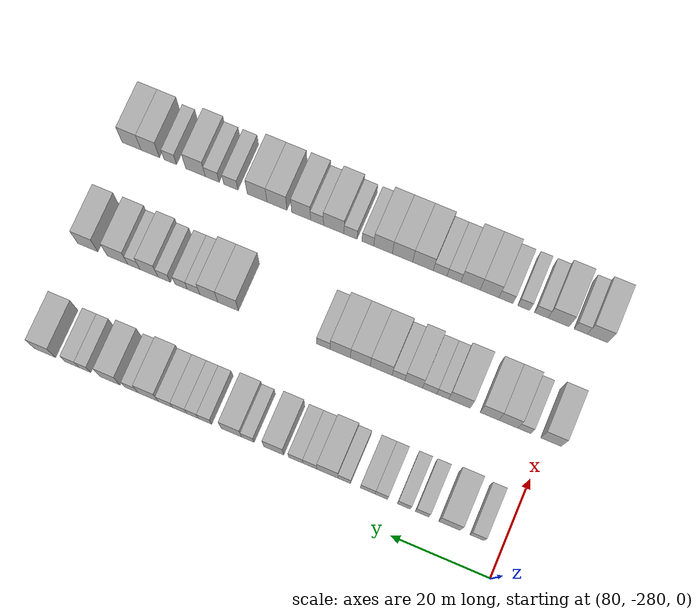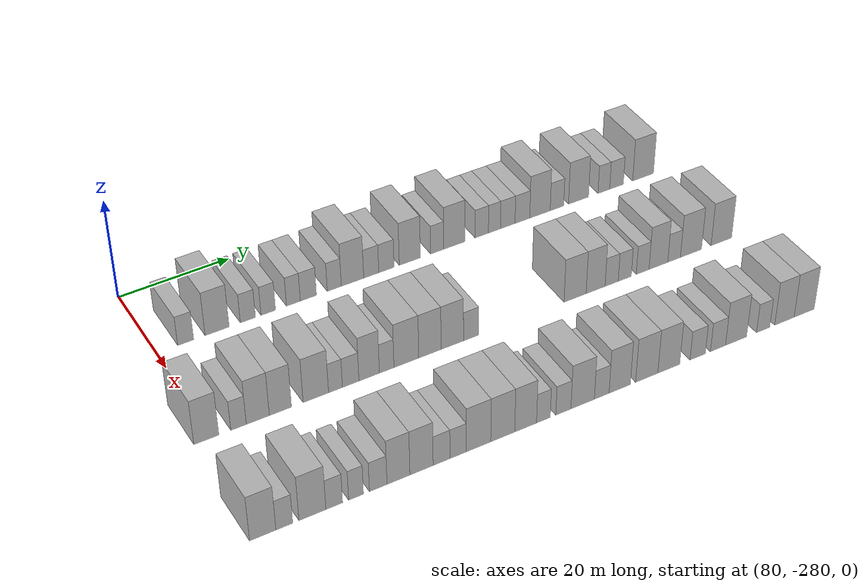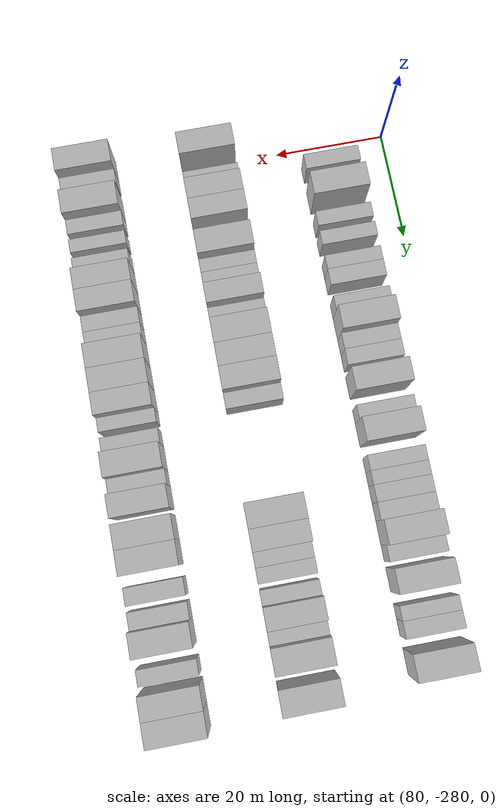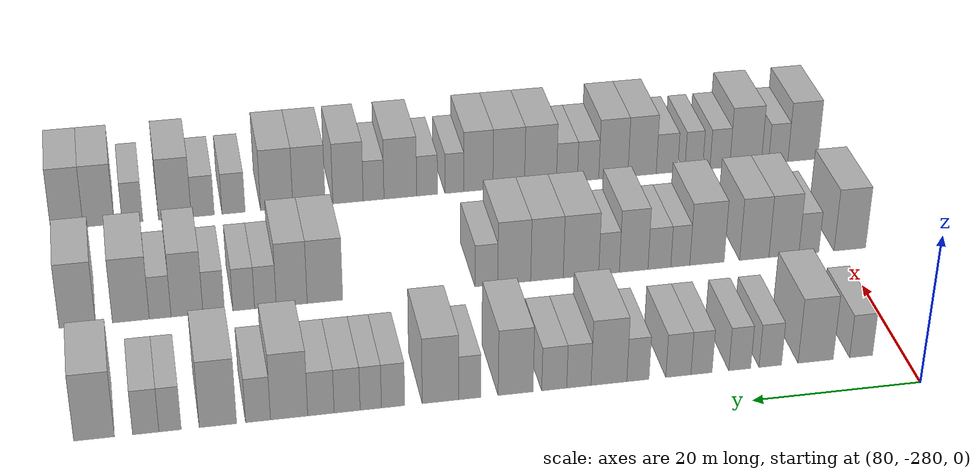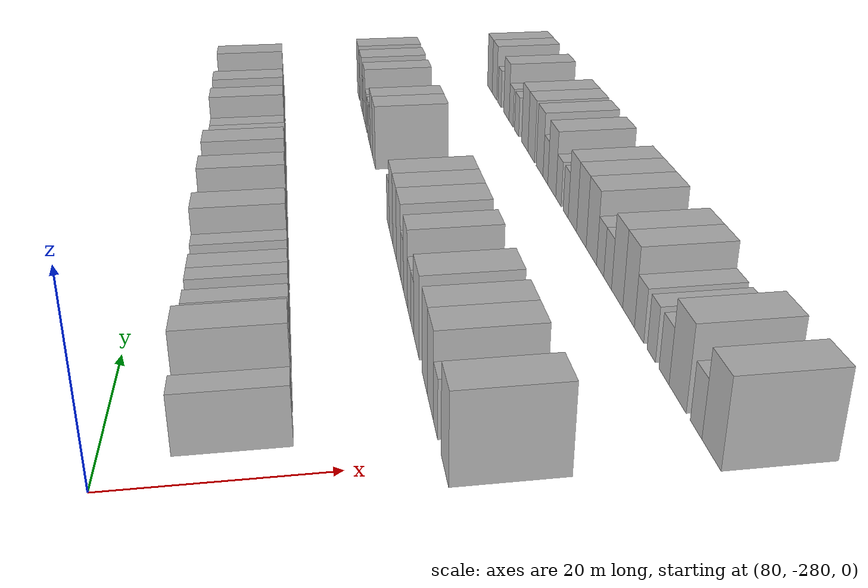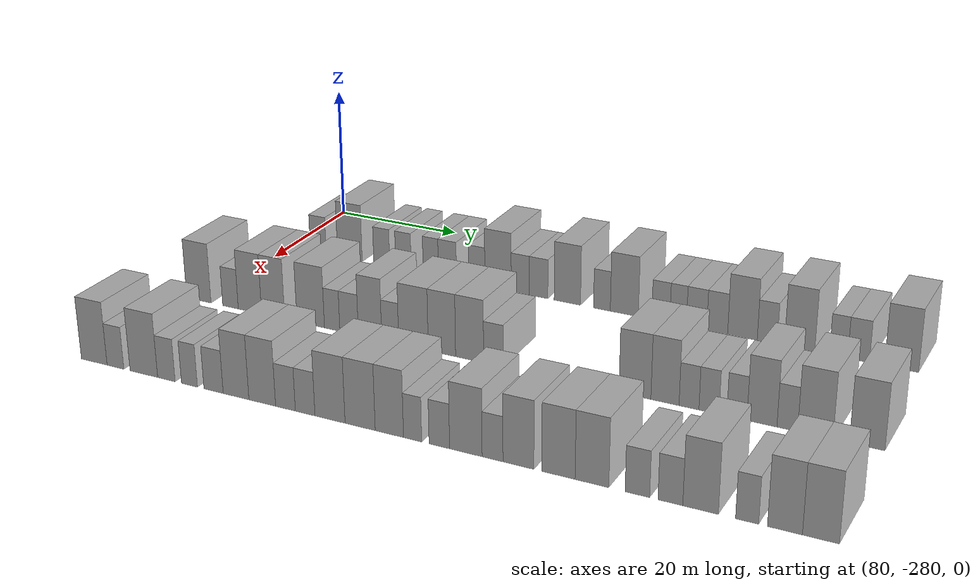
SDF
<sdf version="1.6">
 <world name="default">
  <model name="building_592">
   <static>1</static>
   <pose>91.0000 -274.8973 0 0.000000 0.000000 0.000000</pose>
   <link name="link">
    <pose>0 0 3.00 0 0 0</pose>
    <collision name="collision"><geometry><box><size>10.0000 2.7954 6.0000</size></box></geometry></collision>
    <visual name="visual">
     <cast_shadows>0</cast_shadows>
     <geometry><box><size>10.0000 2.7954 6.0000</size></box></geometry>
     <material>
      <script>
       <uri>model://HANNAS_wall/materials/scripts</uri>
       <uri>model://HANNAS_wall/materials/textures</uri>
       <name>vrc/HANNAS_wall</name>
      </script>
     </material>
    </visual>
   </link>
  </model>
  <model name="building_593">
   <static>1</static>
   <pose>91.0000 -269.3680 0 0.000000 0.000000 0.000000</pose>
   <link name="link">
    <pose>0 0 4.50 0 0 0</pose>
    <collision name="collision"><geometry><box><size>10.0000 4.2632 9.0000</size></box></geometry></collision>
    <visual name="visual">
     <cast_shadows>0</cast_shadows>
     <geometry><box><size>10.0000 4.2632 9.0000</size></box></geometry>
     <material>
      <script>
       <uri>model://HANNAS_wall/materials/scripts</uri>
       <uri>model://HANNAS_wall/materials/textures</uri>
       <name>vrc/HANNAS_wall</name>
      </script>
     </material>
    </visual>
   </link>
  </model>
  <model name="building_594">
   <static>1</static>
   <pose>91.0000 -263.8784 0 0.000000 0.000000 0.000000</pose>
   <link name="link">
    <pose>0 0 3.00 0 0 0</pose>
    <collision name="collision"><geometry><box><size>10.0000 2.7162 6.0000</size></box></geometry></collision>
    <visual name="visual">
     <cast_shadows>0</cast_shadows>
     <geometry><box><size>10.0000 2.7162 6.0000</size></box></geometry>
     <material>
      <script>
       <uri>model://HANNAS_wall/materials/scripts</uri>
       <uri>model://HANNAS_wall/materials/textures</uri>
       <name>vrc/HANNAS_wall</name>
      </script>
     </material>
    </visual>
   </link>
  </model>
  <model name="building_595">
   <static>1</static>
   <pose>91.0000 -260.2085 0 0.000000 0.000000 0.000000</pose>
   <link name="link">
    <pose>0 0 3.00 0 0 0</pose>
    <collision name="collision"><geometry><box><size>10.0000 2.6235 6.0000</size></box></geometry></collision>
    <visual name="visual">
     <cast_shadows>0</cast_shadows>
     <geometry><box><size>10.0000 2.6235 6.0000</size></box></geometry>
     <material>
      <script>
       <uri>model://HANNAS_wall/materials/scripts</uri>
       <uri>model://HANNAS_wall/materials/textures</uri>
       <name>vrc/HANNAS_wall</name>
      </script>
     </material>
    </visual>
   </link>
  </model>
  <model name="building_596">
   <static>1</static>
   <pose>91.0000 -255.6333 0 0.000000 0.000000 0.000000</pose>
   <link name="link">
    <pose>0 0 3.00 0 0 0</pose>
    <collision name="collision"><geometry><box><size>10.0000 2.5269 6.0000</size></box></geometry></collision>
    <visual name="visual">
     <cast_shadows>0</cast_shadows>
     <geometry><box><size>10.0000 2.5269 6.0000</size></box></geometry>
     <material>
      <script>
       <uri>model://HANNAS_wall/materials/scripts</uri>
       <uri>model://HANNAS_wall/materials/textures</uri>
       <name>vrc/HANNAS_wall</name>
      </script>
     </material>
    </visual>
   </link>
  </model>
  <model name="building_597">
   <static>1</static>
   <pose>91.0000 -252.8774 0 0.000000 0.000000 0.000000</pose>
   <link name="link">
    <pose>0 0 3.00 0 0 0</pose>
    <collision name="collision"><geometry><box><size>10.0000 2.9849 6.0000</size></box></geometry></collision>
    <visual name="visual">
     <cast_shadows>0</cast_shadows>
     <geometry><box><size>10.0000 2.9849 6.0000</size></box></geometry>
     <material>
      <script>
       <uri>model://HANNAS_wall/materials/scripts</uri>
       <uri>model://HANNAS_wall/materials/textures</uri>
       <name>vrc/HANNAS_wall</name>
      </script>
     </material>
    </visual>
   </link>
  </model>
  <model name="building_598">
   <static>1</static>
   <pose>91.0000 -248.0759 0 0.000000 0.000000 0.000000</pose>
   <link name="link">
    <pose>0 0 3.00 0 0 0</pose>
    <collision name="collision"><geometry><box><size>10.0000 2.6181 6.0000</size></box></geometry></collision>
    <visual name="visual">
     <cast_shadows>0</cast_shadows>
     <geometry><box><size>10.0000 2.6181 6.0000</size></box></geometry>
     <material>
      <script>
       <uri>model://HANNAS_wall/materials/scripts</uri>
       <uri>model://HANNAS_wall/materials/textures</uri>
       <name>vrc/HANNAS_wall</name>
      </script>
     </material>
    </visual>
   </link>
  </model>
  <model name="building_599">
   <static>1</static>
   <pose>91.0000 -244.6546 0 0.000000 0.000000 0.000000</pose>
   <link name="link">
    <pose>0 0 4.50 0 0 0</pose>
    <collision name="collision"><geometry><box><size>10.0000 4.2245 9.0000</size></box></geometry></collision>
    <visual name="visual">
     <cast_shadows>0</cast_shadows>
     <geometry><box><size>10.0000 4.2245 9.0000</size></box></geometry>
     <material>
      <script>
       <uri>model://HANNAS_wall/materials/scripts</uri>
       <uri>model://HANNAS_wall/materials/textures</uri>
       <name>vrc/HANNAS_wall</name>
      </script>
     </material>
    </visual>
   </link>
  </model>
  <model name="building_600">
   <static>1</static>
   <pose>91.0000 -241.1189 0 0.000000 0.000000 0.000000</pose>
   <link name="link">
    <pose>0 0 3.00 0 0 0</pose>
    <collision name="collision"><geometry><box><size>10.0000 2.8469 6.0000</size></box></geometry></collision>
    <visual name="visual">
     <cast_shadows>0</cast_shadows>
     <geometry><box><size>10.0000 2.8469 6.0000</size></box></geometry>
     <material>
      <script>
       <uri>model://HANNAS_wall/materials/scripts</uri>
       <uri>model://HANNAS_wall/materials/textures</uri>
       <name>vrc/HANNAS_wall</name>
      </script>
     </material>
    </visual>
   </link>
  </model>
  <model name="building_601">
   <static>1</static>
   <pose>91.0000 -238.2325 0 0.000000 0.000000 0.000000</pose>
   <link name="link">
    <pose>0 0 3.00 0 0 0</pose>
    <collision name="collision"><geometry><box><size>10.0000 2.9258 6.0000</size></box></geometry></collision>
    <visual name="visual">
     <cast_shadows>0</cast_shadows>
     <geometry><box><size>10.0000 2.9258 6.0000</size></box></geometry>
     <material>
      <script>
       <uri>model://HANNAS_wall/materials/scripts</uri>
       <uri>model://HANNAS_wall/materials/textures</uri>
       <name>vrc/HANNAS_wall</name>
      </script>
     </material>
    </visual>
   </link>
  </model>
  <model name="building_602">
   <static>1</static>
   <pose>91.0000 -233.7349 0 0.000000 0.000000 0.000000</pose>
   <link name="link">
    <pose>0 0 4.50 0 0 0</pose>
    <collision name="collision"><geometry><box><size>10.0000 4.0695 9.0000</size></box></geometry></collision>
    <visual name="visual">
     <cast_shadows>0</cast_shadows>
     <geometry><box><size>10.0000 4.0695 9.0000</size></box></geometry>
     <material>
      <script>
       <uri>model://HANNAS_wall/materials/scripts</uri>
       <uri>model://HANNAS_wall/materials/textures</uri>
       <name>vrc/HANNAS_wall</name>
      </script>
     </material>
    </visual>
   </link>
  </model>
  <model name="building_603">
   <static>1</static>
   <pose>91.0000 -228.4271 0 0.000000 0.000000 0.000000</pose>
   <link name="link">
    <pose>0 0 3.00 0 0 0</pose>
    <collision name="collision"><geometry><box><size>10.0000 2.5460 6.0000</size></box></geometry></collision>
    <visual name="visual">
     <cast_shadows>0</cast_shadows>
     <geometry><box><size>10.0000 2.5460 6.0000</size></box></geometry>
     <material>
      <script>
       <uri>model://HANNAS_wall/materials/scripts</uri>
       <uri>model://HANNAS_wall/materials/textures</uri>
       <name>vrc/HANNAS_wall</name>
      </script>
     </material>
    </visual>
   </link>
  </model>
  <model name="building_604">
   <static>1</static>
   <pose>91.0000 -225.0515 0 0.000000 0.000000 0.000000</pose>
   <link name="link">
    <pose>0 0 4.50 0 0 0</pose>
    <collision name="collision"><geometry><box><size>10.0000 4.2052 9.0000</size></box></geometry></collision>
    <visual name="visual">
     <cast_shadows>0</cast_shadows>
     <geometry><box><size>10.0000 4.2052 9.0000</size></box></geometry>
     <material>
      <script>
       <uri>model://HANNAS_wall/materials/scripts</uri>
       <uri>model://HANNAS_wall/materials/textures</uri>
       <name>vrc/HANNAS_wall</name>
      </script>
     </material>
    </visual>
   </link>
  </model>
  <model name="building_605">
   <static>1</static>
   <pose>91.0000 -219.6173 0 0.000000 0.000000 0.000000</pose>
   <link name="link">
    <pose>0 0 3.00 0 0 0</pose>
    <collision name="collision"><geometry><box><size>10.0000 2.6631 6.0000</size></box></geometry></collision>
    <visual name="visual">
     <cast_shadows>0</cast_shadows>
     <geometry><box><size>10.0000 2.6631 6.0000</size></box></geometry>
     <material>
      <script>
       <uri>model://HANNAS_wall/materials/scripts</uri>
       <uri>model://HANNAS_wall/materials/textures</uri>
       <name>vrc/HANNAS_wall</name>
      </script>
     </material>
    </visual>
   </link>
  </model>
  <model name="building_606">
   <static>1</static>
   <pose>91.0000 -217.0717 0 0.000000 0.000000 0.000000</pose>
   <link name="link">
    <pose>0 0 3.00 0 0 0</pose>
    <collision name="collision"><geometry><box><size>10.0000 2.4281 6.0000</size></box></geometry></collision>
    <visual name="visual">
     <cast_shadows>0</cast_shadows>
     <geometry><box><size>10.0000 2.4281 6.0000</size></box></geometry>
     <material>
      <script>
       <uri>model://HANNAS_wall/materials/scripts</uri>
       <uri>model://HANNAS_wall/materials/textures</uri>
       <name>vrc/HANNAS_wall</name>
      </script>
     </material>
    </visual>
   </link>
  </model>
  <model name="building_607">
   <static>1</static>
   <pose>91.0000 -214.3846 0 0.000000 0.000000 0.000000</pose>
   <link name="link">
    <pose>0 0 3.00 0 0 0</pose>
    <collision name="collision"><geometry><box><size>10.0000 2.9461 6.0000</size></box></geometry></collision>
    <visual name="visual">
     <cast_shadows>0</cast_shadows>
     <geometry><box><size>10.0000 2.9461 6.0000</size></box></geometry>
     <material>
      <script>
       <uri>model://HANNAS_wall/materials/scripts</uri>
       <uri>model://HANNAS_wall/materials/textures</uri>
       <name>vrc/HANNAS_wall</name>
      </script>
     </material>
    </visual>
   </link>
  </model>
  <model name="building_608">
   <static>1</static>
   <pose>91.0000 -211.4166 0 0.000000 0.000000 0.000000</pose>
   <link name="link">
    <pose>0 0 3.00 0 0 0</pose>
    <collision name="collision"><geometry><box><size>10.0000 2.9899 6.0000</size></box></geometry></collision>
    <visual name="visual">
     <cast_shadows>0</cast_shadows>
     <geometry><box><size>10.0000 2.9899 6.0000</size></box></geometry>
     <material>
      <script>
       <uri>model://HANNAS_wall/materials/scripts</uri>
       <uri>model://HANNAS_wall/materials/textures</uri>
       <name>vrc/HANNAS_wall</name>
      </script>
     </material>
    </visual>
   </link>
  </model>
  <model name="building_609">
   <static>1</static>
   <pose>91.0000 -207.8240 0 0.000000 0.000000 0.000000</pose>
   <link name="link">
    <pose>0 0 4.50 0 0 0</pose>
    <collision name="collision"><geometry><box><size>10.0000 4.1954 9.0000</size></box></geometry></collision>
    <visual name="visual">
     <cast_shadows>0</cast_shadows>
     <geometry><box><size>10.0000 4.1954 9.0000</size></box></geometry>
     <material>
      <script>
       <uri>model://HANNAS_wall/materials/scripts</uri>
       <uri>model://HANNAS_wall/materials/textures</uri>
       <name>vrc/HANNAS_wall</name>
      </script>
     </material>
    </visual>
   </link>
  </model>
  <model name="building_610">
   <static>1</static>
   <pose>91.0000 -204.3295 0 0.000000 0.000000 0.000000</pose>
   <link name="link">
    <pose>0 0 3.00 0 0 0</pose>
    <collision name="collision"><geometry><box><size>10.0000 2.7937 6.0000</size></box></geometry></collision>
    <visual name="visual">
     <cast_shadows>0</cast_shadows>
     <geometry><box><size>10.0000 2.7937 6.0000</size></box></geometry>
     <material>
      <script>
       <uri>model://HANNAS_wall/materials/scripts</uri>
       <uri>model://HANNAS_wall/materials/textures</uri>
       <name>vrc/HANNAS_wall</name>
      </script>
     </material>
    </visual>
   </link>
  </model>
  <model name="building_611">
   <static>1</static>
   <pose>91.0000 -199.8464 0 0.000000 0.000000 0.000000</pose>
   <link name="link">
    <pose>0 0 4.50 0 0 0</pose>
    <collision name="collision"><geometry><box><size>10.0000 4.1726 9.0000</size></box></geometry></collision>
    <visual name="visual">
     <cast_shadows>0</cast_shadows>
     <geometry><box><size>10.0000 4.1726 9.0000</size></box></geometry>
     <material>
      <script>
       <uri>model://HANNAS_wall/materials/scripts</uri>
       <uri>model://HANNAS_wall/materials/textures</uri>
       <name>vrc/HANNAS_wall</name>
      </script>
     </material>
    </visual>
   </link>
  </model>
  <model name="building_612">
   <static>1</static>
   <pose>91.0000 -194.5262 0 0.000000 0.000000 0.000000</pose>
   <link name="link">
    <pose>0 0 3.00 0 0 0</pose>
    <collision name="collision"><geometry><box><size>10.0000 2.4677 6.0000</size></box></geometry></collision>
    <visual name="visual">
     <cast_shadows>0</cast_shadows>
     <geometry><box><size>10.0000 2.4677 6.0000</size></box></geometry>
     <material>
      <script>
       <uri>model://HANNAS_wall/materials/scripts</uri>
       <uri>model://HANNAS_wall/materials/textures</uri>
       <name>vrc/HANNAS_wall</name>
      </script>
     </material>
    </visual>
   </link>
  </model>
  <model name="building_613">
   <static>1</static>
   <pose>91.0000 -191.8383 0 0.000000 0.000000 0.000000</pose>
   <link name="link">
    <pose>0 0 3.00 0 0 0</pose>
    <collision name="collision"><geometry><box><size>10.0000 2.9079 6.0000</size></box></geometry></collision>
    <visual name="visual">
     <cast_shadows>0</cast_shadows>
     <geometry><box><size>10.0000 2.9079 6.0000</size></box></geometry>
     <material>
      <script>
       <uri>model://HANNAS_wall/materials/scripts</uri>
       <uri>model://HANNAS_wall/materials/textures</uri>
       <name>vrc/HANNAS_wall</name>
      </script>
     </material>
    </visual>
   </link>
  </model>
  <model name="building_614">
   <static>1</static>
   <pose>91.0000 -186.1509 0 0.000000 0.000000 0.000000</pose>
   <link name="link">
    <pose>0 0 4.50 0 0 0</pose>
    <collision name="collision"><geometry><box><size>10.0000 4.4670 9.0000</size></box></geometry></collision>
    <visual name="visual">
     <cast_shadows>0</cast_shadows>
     <geometry><box><size>10.0000 4.4670 9.0000</size></box></geometry>
     <material>
      <script>
       <uri>model://HANNAS_wall/materials/scripts</uri>
       <uri>model://HANNAS_wall/materials/textures</uri>
       <name>vrc/HANNAS_wall</name>
      </script>
     </material>
    </visual>
   </link>
  </model>
  <model name="building_779">
   <static>1</static>
   <pose>113.0000 -281.0639 0 0.000000 0.000000 0.000000</pose>
   <link name="link">
    <pose>0 0 4.50 0 0 0</pose>
    <collision name="collision"><geometry><box><size>10.0000 4.1488 9.0000</size></box></geometry></collision>
    <visual name="visual">
     <cast_shadows>0</cast_shadows>
     <geometry><box><size>10.0000 4.1488 9.0000</size></box></geometry>
     <material>
      <script>
       <uri>model://HANNAS_wall/materials/scripts</uri>
       <uri>model://HANNAS_wall/materials/textures</uri>
       <name>vrc/HANNAS_wall</name>
      </script>
     </material>
    </visual>
   </link>
  </model>
  <model name="building_780">
   <static>1</static>
   <pose>113.0000 -275.6864 0 0.000000 0.000000 0.000000</pose>
   <link name="link">
    <pose>0 0 3.00 0 0 0</pose>
    <collision name="collision"><geometry><box><size>10.0000 2.6061 6.0000</size></box></geometry></collision>
    <visual name="visual">
     <cast_shadows>0</cast_shadows>
     <geometry><box><size>10.0000 2.6061 6.0000</size></box></geometry>
     <material>
      <script>
       <uri>model://HANNAS_wall/materials/scripts</uri>
       <uri>model://HANNAS_wall/materials/textures</uri>
       <name>vrc/HANNAS_wall</name>
      </script>
     </material>
    </visual>
   </link>
  </model>
  <model name="building_781">
   <static>1</static>
   <pose>113.0000 -272.4331 0 0.000000 0.000000 0.000000</pose>
   <link name="link">
    <pose>0 0 4.50 0 0 0</pose>
    <collision name="collision"><geometry><box><size>10.0000 3.9006 9.0000</size></box></geometry></collision>
    <visual name="visual">
     <cast_shadows>0</cast_shadows>
     <geometry><box><size>10.0000 3.9006 9.0000</size></box></geometry>
     <material>
      <script>
       <uri>model://HANNAS_wall/materials/scripts</uri>
       <uri>model://HANNAS_wall/materials/textures</uri>
       <name>vrc/HANNAS_wall</name>
      </script>
     </material>
    </visual>
   </link>
  </model>
  <model name="building_782">
   <static>1</static>
   <pose>113.0000 -268.5843 0 0.000000 0.000000 0.000000</pose>
   <link name="link">
    <pose>0 0 4.50 0 0 0</pose>
    <collision name="collision"><geometry><box><size>10.0000 3.7970 9.0000</size></box></geometry></collision>
    <visual name="visual">
     <cast_shadows>0</cast_shadows>
     <geometry><box><size>10.0000 3.7970 9.0000</size></box></geometry>
     <material>
      <script>
       <uri>model://HANNAS_wall/materials/scripts</uri>
       <uri>model://HANNAS_wall/materials/textures</uri>
       <name>vrc/HANNAS_wall</name>
      </script>
     </material>
    </visual>
   </link>
  </model>
  <model name="building_783">
   <static>1</static>
   <pose>113.0000 -262.4732 0 0.000000 0.000000 0.000000</pose>
   <link name="link">
    <pose>0 0 4.50 0 0 0</pose>
    <collision name="collision"><geometry><box><size>10.0000 4.4252 9.0000</size></box></geometry></collision>
    <visual name="visual">
     <cast_shadows>0</cast_shadows>
     <geometry><box><size>10.0000 4.4252 9.0000</size></box></geometry>
     <material>
      <script>
       <uri>model://HANNAS_wall/materials/scripts</uri>
       <uri>model://HANNAS_wall/materials/textures</uri>
       <name>vrc/HANNAS_wall</name>
      </script>
     </material>
    </visual>
   </link>
  </model>
  <model name="building_784">
   <static>1</static>
   <pose>113.0000 -259.0394 0 0.000000 0.000000 0.000000</pose>
   <link name="link">
    <pose>0 0 3.00 0 0 0</pose>
    <collision name="collision"><geometry><box><size>10.0000 2.4423 6.0000</size></box></geometry></collision>
    <visual name="visual">
     <cast_shadows>0</cast_shadows>
     <geometry><box><size>10.0000 2.4423 6.0000</size></box></geometry>
     <material>
      <script>
       <uri>model://HANNAS_wall/materials/scripts</uri>
       <uri>model://HANNAS_wall/materials/textures</uri>
       <name>vrc/HANNAS_wall</name>
      </script>
     </material>
    </visual>
   </link>
  </model>
  <model name="building_785">
   <static>1</static>
   <pose>113.0000 -256.3604 0 0.000000 0.000000 0.000000</pose>
   <link name="link">
    <pose>0 0 3.00 0 0 0</pose>
    <collision name="collision"><geometry><box><size>10.0000 2.9159 6.0000</size></box></geometry></collision>
    <visual name="visual">
     <cast_shadows>0</cast_shadows>
     <geometry><box><size>10.0000 2.9159 6.0000</size></box></geometry>
     <material>
      <script>
       <uri>model://HANNAS_wall/materials/scripts</uri>
       <uri>model://HANNAS_wall/materials/textures</uri>
       <name>vrc/HANNAS_wall</name>
      </script>
     </material>
    </visual>
   </link>
  </model>
  <model name="building_786">
   <static>1</static>
   <pose>113.0000 -253.0785 0 0.000000 0.000000 0.000000</pose>
   <link name="link">
    <pose>0 0 4.50 0 0 0</pose>
    <collision name="collision"><geometry><box><size>10.0000 3.6478 9.0000</size></box></geometry></collision>
    <visual name="visual">
     <cast_shadows>0</cast_shadows>
     <geometry><box><size>10.0000 3.6478 9.0000</size></box></geometry>
     <material>
      <script>
       <uri>model://HANNAS_wall/materials/scripts</uri>
       <uri>model://HANNAS_wall/materials/textures</uri>
       <name>vrc/HANNAS_wall</name>
      </script>
     </material>
    </visual>
   </link>
  </model>
  <model name="building_787">
   <static>1</static>
   <pose>113.0000 -249.9447 0 0.000000 0.000000 0.000000</pose>
   <link name="link">
    <pose>0 0 3.00 0 0 0</pose>
    <collision name="collision"><geometry><box><size>10.0000 2.6198 6.0000</size></box></geometry></collision>
    <visual name="visual">
     <cast_shadows>0</cast_shadows>
     <geometry><box><size>10.0000 2.6198 6.0000</size></box></geometry>
     <material>
      <script>
       <uri>model://HANNAS_wall/materials/scripts</uri>
       <uri>model://HANNAS_wall/materials/textures</uri>
       <name>vrc/HANNAS_wall</name>
      </script>
     </material>
    </visual>
   </link>
  </model>
  <model name="building_788">
   <static>1</static>
   <pose>113.0000 -246.3886 0 0.000000 0.000000 0.000000</pose>
   <link name="link">
    <pose>0 0 4.50 0 0 0</pose>
    <collision name="collision"><geometry><box><size>10.0000 4.4924 9.0000</size></box></geometry></collision>
    <visual name="visual">
     <cast_shadows>0</cast_shadows>
     <geometry><box><size>10.0000 4.4924 9.0000</size></box></geometry>
     <material>
      <script>
       <uri>model://HANNAS_wall/materials/scripts</uri>
       <uri>model://HANNAS_wall/materials/textures</uri>
       <name>vrc/HANNAS_wall</name>
      </script>
     </material>
    </visual>
   </link>
  </model>
  <model name="building_789">
   <static>1</static>
   <pose>113.0000 -242.0930 0 0.000000 0.000000 0.000000</pose>
   <link name="link">
    <pose>0 0 4.50 0 0 0</pose>
    <collision name="collision"><geometry><box><size>10.0000 4.0987 9.0000</size></box></geometry></collision>
    <visual name="visual">
     <cast_shadows>0</cast_shadows>
     <geometry><box><size>10.0000 4.0987 9.0000</size></box></geometry>
     <material>
      <script>
       <uri>model://HANNAS_wall/materials/scripts</uri>
       <uri>model://HANNAS_wall/materials/textures</uri>
       <name>vrc/HANNAS_wall</name>
      </script>
     </material>
    </visual>
   </link>
  </model>
  <model name="building_790">
   <static>1</static>
   <pose>113.0000 -237.9761 0 0.000000 0.000000 0.000000</pose>
   <link name="link">
    <pose>0 0 4.50 0 0 0</pose>
    <collision name="collision"><geometry><box><size>10.0000 4.1350 9.0000</size></box></geometry></collision>
    <visual name="visual">
     <cast_shadows>0</cast_shadows>
     <geometry><box><size>10.0000 4.1350 9.0000</size></box></geometry>
     <material>
      <script>
       <uri>model://HANNAS_wall/materials/scripts</uri>
       <uri>model://HANNAS_wall/materials/textures</uri>
       <name>vrc/HANNAS_wall</name>
      </script>
     </material>
    </visual>
   </link>
  </model>
  <model name="building_791">
   <static>1</static>
   <pose>113.0000 -234.4866 0 0.000000 0.000000 0.000000</pose>
   <link name="link">
    <pose>0 0 3.00 0 0 0</pose>
    <collision name="collision"><geometry><box><size>10.0000 2.8439 6.0000</size></box></geometry></collision>
    <visual name="visual">
     <cast_shadows>0</cast_shadows>
     <geometry><box><size>10.0000 2.8439 6.0000</size></box></geometry>
     <material>
      <script>
       <uri>model://HANNAS_wall/materials/scripts</uri>
       <uri>model://HANNAS_wall/materials/textures</uri>
       <name>vrc/HANNAS_wall</name>
      </script>
     </material>
    </visual>
   </link>
  </model>
  <model name="building_792">
   <static>1</static>
   <pose>113.0000 -214.5796 0 0.000000 0.000000 0.000000</pose>
   <link name="link">
    <pose>0 0 4.50 0 0 0</pose>
    <collision name="collision"><geometry><box><size>10.0000 4.3234 9.0000</size></box></geometry></collision>
    <visual name="visual">
     <cast_shadows>0</cast_shadows>
     <geometry><box><size>10.0000 4.3234 9.0000</size></box></geometry>
     <material>
      <script>
       <uri>model://HANNAS_wall/materials/scripts</uri>
       <uri>model://HANNAS_wall/materials/textures</uri>
       <name>vrc/HANNAS_wall</name>
      </script>
     </material>
    </visual>
   </link>
  </model>
  <model name="building_793">
   <static>1</static>
   <pose>113.0000 -210.5376 0 0.000000 0.000000 0.000000</pose>
   <link name="link">
    <pose>0 0 4.50 0 0 0</pose>
    <collision name="collision"><geometry><box><size>10.0000 3.7606 9.0000</size></box></geometry></collision>
    <visual name="visual">
     <cast_shadows>0</cast_shadows>
     <geometry><box><size>10.0000 3.7606 9.0000</size></box></geometry>
     <material>
      <script>
       <uri>model://HANNAS_wall/materials/scripts</uri>
       <uri>model://HANNAS_wall/materials/textures</uri>
       <name>vrc/HANNAS_wall</name>
      </script>
     </material>
    </visual>
   </link>
  </model>
  <model name="building_794">
   <static>1</static>
   <pose>113.0000 -207.3468 0 0.000000 0.000000 0.000000</pose>
   <link name="link">
    <pose>0 0 3.00 0 0 0</pose>
    <collision name="collision"><geometry><box><size>10.0000 2.6208 6.0000</size></box></geometry></collision>
    <visual name="visual">
     <cast_shadows>0</cast_shadows>
     <geometry><box><size>10.0000 2.6208 6.0000</size></box></geometry>
     <material>
      <script>
       <uri>model://HANNAS_wall/materials/scripts</uri>
       <uri>model://HANNAS_wall/materials/textures</uri>
       <name>vrc/HANNAS_wall</name>
      </script>
     </material>
    </visual>
   </link>
  </model>
  <model name="building_795">
   <static>1</static>
   <pose>113.0000 -204.7209 0 0.000000 0.000000 0.000000</pose>
   <link name="link">
    <pose>0 0 3.00 0 0 0</pose>
    <collision name="collision"><geometry><box><size>10.0000 2.6310 6.0000</size></box></geometry></collision>
    <visual name="visual">
     <cast_shadows>0</cast_shadows>
     <geometry><box><size>10.0000 2.6310 6.0000</size></box></geometry>
     <material>
      <script>
       <uri>model://HANNAS_wall/materials/scripts</uri>
       <uri>model://HANNAS_wall/materials/textures</uri>
       <name>vrc/HANNAS_wall</name>
      </script>
     </material>
    </visual>
   </link>
  </model>
  <model name="building_796">
   <static>1</static>
   <pose>113.0000 -201.1106 0 0.000000 0.000000 0.000000</pose>
   <link name="link">
    <pose>0 0 3.00 0 0 0</pose>
    <collision name="collision"><geometry><box><size>10.0000 2.5897 6.0000</size></box></geometry></collision>
    <visual name="visual">
     <cast_shadows>0</cast_shadows>
     <geometry><box><size>10.0000 2.5897 6.0000</size></box></geometry>
     <material>
      <script>
       <uri>model://HANNAS_wall/materials/scripts</uri>
       <uri>model://HANNAS_wall/materials/textures</uri>
       <name>vrc/HANNAS_wall</name>
      </script>
     </material>
    </visual>
   </link>
  </model>
  <model name="building_797">
   <static>1</static>
   <pose>113.0000 -197.9054 0 0.000000 0.000000 0.000000</pose>
   <link name="link">
    <pose>0 0 4.50 0 0 0</pose>
    <collision name="collision"><geometry><box><size>10.0000 3.8207 9.0000</size></box></geometry></collision>
    <visual name="visual">
     <cast_shadows>0</cast_shadows>
     <geometry><box><size>10.0000 3.8207 9.0000</size></box></geometry>
     <material>
      <script>
       <uri>model://HANNAS_wall/materials/scripts</uri>
       <uri>model://HANNAS_wall/materials/textures</uri>
       <name>vrc/HANNAS_wall</name>
      </script>
     </material>
    </visual>
   </link>
  </model>
  <model name="building_798">
   <static>1</static>
   <pose>113.0000 -194.6949 0 0.000000 0.000000 0.000000</pose>
   <link name="link">
    <pose>0 0 3.00 0 0 0</pose>
    <collision name="collision"><geometry><box><size>10.0000 2.6004 6.0000</size></box></geometry></collision>
    <visual name="visual">
     <cast_shadows>0</cast_shadows>
     <geometry><box><size>10.0000 2.6004 6.0000</size></box></geometry>
     <material>
      <script>
       <uri>model://HANNAS_wall/materials/scripts</uri>
       <uri>model://HANNAS_wall/materials/textures</uri>
       <name>vrc/HANNAS_wall</name>
      </script>
     </material>
    </visual>
   </link>
  </model>
  <model name="building_799">
   <static>1</static>
   <pose>113.0000 -191.2028 0 0.000000 0.000000 0.000000</pose>
   <link name="link">
    <pose>0 0 4.50 0 0 0</pose>
    <collision name="collision"><geometry><box><size>10.0000 4.3839 9.0000</size></box></geometry></collision>
    <visual name="visual">
     <cast_shadows>0</cast_shadows>
     <geometry><box><size>10.0000 4.3839 9.0000</size></box></geometry>
     <material>
      <script>
       <uri>model://HANNAS_wall/materials/scripts</uri>
       <uri>model://HANNAS_wall/materials/textures</uri>
       <name>vrc/HANNAS_wall</name>
      </script>
     </material>
    </visual>
   </link>
  </model>
  <model name="building_800">
   <static>1</static>
   <pose>113.0000 -184.8566 0 0.000000 0.000000 0.000000</pose>
   <link name="link">
    <pose>0 0 4.50 0 0 0</pose>
    <collision name="collision"><geometry><box><size>10.0000 4.3085 9.0000</size></box></geometry></collision>
    <visual name="visual">
     <cast_shadows>0</cast_shadows>
     <geometry><box><size>10.0000 4.3085 9.0000</size></box></geometry>
     <material>
      <script>
       <uri>model://HANNAS_wall/materials/scripts</uri>
       <uri>model://HANNAS_wall/materials/textures</uri>
       <name>vrc/HANNAS_wall</name>
      </script>
     </material>
    </visual>
   </link>
  </model>
  <model name="building_969">
   <static>1</static>
   <pose>135.0000 -281.9927 0 0.000000 0.000000 0.000000</pose>
   <link name="link">
    <pose>0 0 4.50 0 0 0</pose>
    <collision name="collision"><geometry><box><size>10.0000 4.1954 9.0000</size></box></geometry></collision>
    <visual name="visual">
     <cast_shadows>0</cast_shadows>
     <geometry><box><size>10.0000 4.1954 9.0000</size></box></geometry>
     <material>
      <script>
       <uri>model://HANNAS_wall/materials/scripts</uri>
       <uri>model://HANNAS_wall/materials/textures</uri>
       <name>vrc/HANNAS_wall</name>
      </script>
     </material>
    </visual>
   </link>
  </model>
  <model name="building_970">
   <static>1</static>
   <pose>135.0000 -278.5426 0 0.000000 0.000000 0.000000</pose>
   <link name="link">
    <pose>0 0 3.00 0 0 0</pose>
    <collision name="collision"><geometry><box><size>10.0000 2.7048 6.0000</size></box></geometry></collision>
    <visual name="visual">
     <cast_shadows>0</cast_shadows>
     <geometry><box><size>10.0000 2.7048 6.0000</size></box></geometry>
     <material>
      <script>
       <uri>model://HANNAS_wall/materials/scripts</uri>
       <uri>model://HANNAS_wall/materials/textures</uri>
       <name>vrc/HANNAS_wall</name>
      </script>
     </material>
    </visual>
   </link>
  </model>
  <model name="building_971">
   <static>1</static>
   <pose>135.0000 -273.9978 0 0.000000 0.000000 0.000000</pose>
   <link name="link">
    <pose>0 0 4.50 0 0 0</pose>
    <collision name="collision"><geometry><box><size>10.0000 4.3847 9.0000</size></box></geometry></collision>
    <visual name="visual">
     <cast_shadows>0</cast_shadows>
     <geometry><box><size>10.0000 4.3847 9.0000</size></box></geometry>
     <material>
      <script>
       <uri>model://HANNAS_wall/materials/scripts</uri>
       <uri>model://HANNAS_wall/materials/textures</uri>
       <name>vrc/HANNAS_wall</name>
      </script>
     </material>
    </visual>
   </link>
  </model>
  <model name="building_972">
   <static>1</static>
   <pose>135.0000 -270.4334 0 0.000000 0.000000 0.000000</pose>
   <link name="link">
    <pose>0 0 3.00 0 0 0</pose>
    <collision name="collision"><geometry><box><size>10.0000 2.7441 6.0000</size></box></geometry></collision>
    <visual name="visual">
     <cast_shadows>0</cast_shadows>
     <geometry><box><size>10.0000 2.7441 6.0000</size></box></geometry>
     <material>
      <script>
       <uri>model://HANNAS_wall/materials/scripts</uri>
       <uri>model://HANNAS_wall/materials/textures</uri>
       <name>vrc/HANNAS_wall</name>
      </script>
     </material>
    </visual>
   </link>
  </model>
  <model name="building_973">
   <static>1</static>
   <pose>135.0000 -266.8317 0 0.000000 0.000000 0.000000</pose>
   <link name="link">
    <pose>0 0 3.00 0 0 0</pose>
    <collision name="collision"><geometry><box><size>10.0000 2.4593 6.0000</size></box></geometry></collision>
    <visual name="visual">
     <cast_shadows>0</cast_shadows>
     <geometry><box><size>10.0000 2.4593 6.0000</size></box></geometry>
     <material>
      <script>
       <uri>model://HANNAS_wall/materials/scripts</uri>
       <uri>model://HANNAS_wall/materials/textures</uri>
       <name>vrc/HANNAS_wall</name>
      </script>
     </material>
    </visual>
   </link>
  </model>
  <model name="building_974">
   <static>1</static>
   <pose>135.0000 -263.1345 0 0.000000 0.000000 0.000000</pose>
   <link name="link">
    <pose>0 0 3.00 0 0 0</pose>
    <collision name="collision"><geometry><box><size>10.0000 2.9352 6.0000</size></box></geometry></collision>
    <visual name="visual">
     <cast_shadows>0</cast_shadows>
     <geometry><box><size>10.0000 2.9352 6.0000</size></box></geometry>
     <material>
      <script>
       <uri>model://HANNAS_wall/materials/scripts</uri>
       <uri>model://HANNAS_wall/materials/textures</uri>
       <name>vrc/HANNAS_wall</name>
      </script>
     </material>
    </visual>
   </link>
  </model>
  <model name="building_975">
   <static>1</static>
   <pose>135.0000 -259.7271 0 0.000000 0.000000 0.000000</pose>
   <link name="link">
    <pose>0 0 4.50 0 0 0</pose>
    <collision name="collision"><geometry><box><size>10.0000 3.8796 9.0000</size></box></geometry></collision>
    <visual name="visual">
     <cast_shadows>0</cast_shadows>
     <geometry><box><size>10.0000 3.8796 9.0000</size></box></geometry>
     <material>
      <script>
       <uri>model://HANNAS_wall/materials/scripts</uri>
       <uri>model://HANNAS_wall/materials/textures</uri>
       <name>vrc/HANNAS_wall</name>
      </script>
     </material>
    </visual>
   </link>
  </model>
  <model name="building_976">
   <static>1</static>
   <pose>135.0000 -255.8022 0 0.000000 0.000000 0.000000</pose>
   <link name="link">
    <pose>0 0 4.50 0 0 0</pose>
    <collision name="collision"><geometry><box><size>10.0000 3.9701 9.0000</size></box></geometry></collision>
    <visual name="visual">
     <cast_shadows>0</cast_shadows>
     <geometry><box><size>10.0000 3.9701 9.0000</size></box></geometry>
     <material>
      <script>
       <uri>model://HANNAS_wall/materials/scripts</uri>
       <uri>model://HANNAS_wall/materials/textures</uri>
       <name>vrc/HANNAS_wall</name>
      </script>
     </material>
    </visual>
   </link>
  </model>
  <model name="building_977">
   <static>1</static>
   <pose>135.0000 -252.3696 0 0.000000 0.000000 0.000000</pose>
   <link name="link">
    <pose>0 0 3.00 0 0 0</pose>
    <collision name="collision"><geometry><box><size>10.0000 2.8952 6.0000</size></box></geometry></collision>
    <visual name="visual">
     <cast_shadows>0</cast_shadows>
     <geometry><box><size>10.0000 2.8952 6.0000</size></box></geometry>
     <material>
      <script>
       <uri>model://HANNAS_wall/materials/scripts</uri>
       <uri>model://HANNAS_wall/materials/textures</uri>
       <name>vrc/HANNAS_wall</name>
      </script>
     </material>
    </visual>
   </link>
  </model>
  <model name="building_978">
   <static>1</static>
   <pose>135.0000 -249.5004 0 0.000000 0.000000 0.000000</pose>
   <link name="link">
    <pose>0 0 3.00 0 0 0</pose>
    <collision name="collision"><geometry><box><size>10.0000 2.8432 6.0000</size></box></geometry></collision>
    <visual name="visual">
     <cast_shadows>0</cast_shadows>
     <geometry><box><size>10.0000 2.8432 6.0000</size></box></geometry>
     <material>
      <script>
       <uri>model://HANNAS_wall/materials/scripts</uri>
       <uri>model://HANNAS_wall/materials/textures</uri>
       <name>vrc/HANNAS_wall</name>
      </script>
     </material>
    </visual>
   </link>
  </model>
  <model name="building_979">
   <static>1</static>
   <pose>135.0000 -245.9258 0 0.000000 0.000000 0.000000</pose>
   <link name="link">
    <pose>0 0 4.50 0 0 0</pose>
    <collision name="collision"><geometry><box><size>10.0000 4.3060 9.0000</size></box></geometry></collision>
    <visual name="visual">
     <cast_shadows>0</cast_shadows>
     <geometry><box><size>10.0000 4.3060 9.0000</size></box></geometry>
     <material>
      <script>
       <uri>model://HANNAS_wall/materials/scripts</uri>
       <uri>model://HANNAS_wall/materials/textures</uri>
       <name>vrc/HANNAS_wall</name>
      </script>
     </material>
    </visual>
   </link>
  </model>
  <model name="building_980">
   <static>1</static>
   <pose>135.0000 -241.6509 0 0.000000 0.000000 0.000000</pose>
   <link name="link">
    <pose>0 0 4.50 0 0 0</pose>
    <collision name="collision"><geometry><box><size>10.0000 4.2438 9.0000</size></box></geometry></collision>
    <visual name="visual">
     <cast_shadows>0</cast_shadows>
     <geometry><box><size>10.0000 4.2438 9.0000</size></box></geometry>
     <material>
      <script>
       <uri>model://HANNAS_wall/materials/scripts</uri>
       <uri>model://HANNAS_wall/materials/textures</uri>
       <name>vrc/HANNAS_wall</name>
      </script>
     </material>
    </visual>
   </link>
  </model>
  <model name="building_981">
   <static>1</static>
   <pose>135.0000 -237.5709 0 0.000000 0.000000 0.000000</pose>
   <link name="link">
    <pose>0 0 4.50 0 0 0</pose>
    <collision name="collision"><geometry><box><size>10.0000 3.9162 9.0000</size></box></geometry></collision>
    <visual name="visual">
     <cast_shadows>0</cast_shadows>
     <geometry><box><size>10.0000 3.9162 9.0000</size></box></geometry>
     <material>
      <script>
       <uri>model://HANNAS_wall/materials/scripts</uri>
       <uri>model://HANNAS_wall/materials/textures</uri>
       <name>vrc/HANNAS_wall</name>
      </script>
     </material>
    </visual>
   </link>
  </model>
  <model name="building_982">
   <static>1</static>
   <pose>135.0000 -234.3702 0 0.000000 0.000000 0.000000</pose>
   <link name="link">
    <pose>0 0 3.00 0 0 0</pose>
    <collision name="collision"><geometry><box><size>10.0000 2.4852 6.0000</size></box></geometry></collision>
    <visual name="visual">
     <cast_shadows>0</cast_shadows>
     <geometry><box><size>10.0000 2.4852 6.0000</size></box></geometry>
     <material>
      <script>
       <uri>model://HANNAS_wall/materials/scripts</uri>
       <uri>model://HANNAS_wall/materials/textures</uri>
       <name>vrc/HANNAS_wall</name>
      </script>
     </material>
    </visual>
   </link>
  </model>
  <model name="building_983">
   <static>1</static>
   <pose>135.0000 -230.7466 0 0.000000 0.000000 0.000000</pose>
   <link name="link">
    <pose>0 0 3.00 0 0 0</pose>
    <collision name="collision"><geometry><box><size>10.0000 2.7620 6.0000</size></box></geometry></collision>
    <visual name="visual">
     <cast_shadows>0</cast_shadows>
     <geometry><box><size>10.0000 2.7620 6.0000</size></box></geometry>
     <material>
      <script>
       <uri>model://HANNAS_wall/materials/scripts</uri>
       <uri>model://HANNAS_wall/materials/textures</uri>
       <name>vrc/HANNAS_wall</name>
      </script>
     </material>
    </visual>
   </link>
  </model>
  <model name="building_984">
   <static>1</static>
   <pose>135.0000 -227.2032 0 0.000000 0.000000 0.000000</pose>
   <link name="link">
    <pose>0 0 4.50 0 0 0</pose>
    <collision name="collision"><geometry><box><size>10.0000 4.3247 9.0000</size></box></geometry></collision>
    <visual name="visual">
     <cast_shadows>0</cast_shadows>
     <geometry><box><size>10.0000 4.3247 9.0000</size></box></geometry>
     <material>
      <script>
       <uri>model://HANNAS_wall/materials/scripts</uri>
       <uri>model://HANNAS_wall/materials/textures</uri>
       <name>vrc/HANNAS_wall</name>
      </script>
     </material>
    </visual>
   </link>
  </model>
  <model name="building_985">
   <static>1</static>
   <pose>135.0000 -223.6732 0 0.000000 0.000000 0.000000</pose>
   <link name="link">
    <pose>0 0 3.00 0 0 0</pose>
    <collision name="collision"><geometry><box><size>10.0000 2.7352 6.0000</size></box></geometry></collision>
    <visual name="visual">
     <cast_shadows>0</cast_shadows>
     <geometry><box><size>10.0000 2.7352 6.0000</size></box></geometry>
     <material>
      <script>
       <uri>model://HANNAS_wall/materials/scripts</uri>
       <uri>model://HANNAS_wall/materials/textures</uri>
       <name>vrc/HANNAS_wall</name>
      </script>
     </material>
    </visual>
   </link>
  </model>
  <model name="building_986">
   <static>1</static>
   <pose>135.0000 -220.3104 0 0.000000 0.000000 0.000000</pose>
   <link name="link">
    <pose>0 0 4.50 0 0 0</pose>
    <collision name="collision"><geometry><box><size>10.0000 3.9905 9.0000</size></box></geometry></collision>
    <visual name="visual">
     <cast_shadows>0</cast_shadows>
     <geometry><box><size>10.0000 3.9905 9.0000</size></box></geometry>
     <material>
      <script>
       <uri>model://HANNAS_wall/materials/scripts</uri>
       <uri>model://HANNAS_wall/materials/textures</uri>
       <name>vrc/HANNAS_wall</name>
      </script>
     </material>
    </visual>
   </link>
  </model>
  <model name="building_987">
   <static>1</static>
   <pose>135.0000 -215.2015 0 0.000000 0.000000 0.000000</pose>
   <link name="link">
    <pose>0 0 4.50 0 0 0</pose>
    <collision name="collision"><geometry><box><size>10.0000 4.2273 9.0000</size></box></geometry></collision>
    <visual name="visual">
     <cast_shadows>0</cast_shadows>
     <geometry><box><size>10.0000 4.2273 9.0000</size></box></geometry>
     <material>
      <script>
       <uri>model://HANNAS_wall/materials/scripts</uri>
       <uri>model://HANNAS_wall/materials/textures</uri>
       <name>vrc/HANNAS_wall</name>
      </script>
     </material>
    </visual>
   </link>
  </model>
  <model name="building_988">
   <static>1</static>
   <pose>135.0000 -210.9882 0 0.000000 0.000000 0.000000</pose>
   <link name="link">
    <pose>0 0 4.50 0 0 0</pose>
    <collision name="collision"><geometry><box><size>10.0000 4.1993 9.0000</size></box></geometry></collision>
    <visual name="visual">
     <cast_shadows>0</cast_shadows>
     <geometry><box><size>10.0000 4.1993 9.0000</size></box></geometry>
     <material>
      <script>
       <uri>model://HANNAS_wall/materials/scripts</uri>
       <uri>model://HANNAS_wall/materials/textures</uri>
       <name>vrc/HANNAS_wall</name>
      </script>
     </material>
    </visual>
   </link>
  </model>
  <model name="building_989">
   <static>1</static>
   <pose>135.0000 -205.3954 0 0.000000 0.000000 0.000000</pose>
   <link name="link">
    <pose>0 0 3.00 0 0 0</pose>
    <collision name="collision"><geometry><box><size>10.0000 2.9862 6.0000</size></box></geometry></collision>
    <visual name="visual">
     <cast_shadows>0</cast_shadows>
     <geometry><box><size>10.0000 2.9862 6.0000</size></box></geometry>
     <material>
      <script>
       <uri>model://HANNAS_wall/materials/scripts</uri>
       <uri>model://HANNAS_wall/materials/textures</uri>
       <name>vrc/HANNAS_wall</name>
      </script>
     </material>
    </visual>
   </link>
  </model>
  <model name="building_990">
   <static>1</static>
   <pose>135.0000 -201.4186 0 0.000000 0.000000 0.000000</pose>
   <link name="link">
    <pose>0 0 3.00 0 0 0</pose>
    <collision name="collision"><geometry><box><size>10.0000 2.9674 6.0000</size></box></geometry></collision>
    <visual name="visual">
     <cast_shadows>0</cast_shadows>
     <geometry><box><size>10.0000 2.9674 6.0000</size></box></geometry>
     <material>
      <script>
       <uri>model://HANNAS_wall/materials/scripts</uri>
       <uri>model://HANNAS_wall/materials/textures</uri>
       <name>vrc/HANNAS_wall</name>
      </script>
     </material>
    </visual>
   </link>
  </model>
  <model name="building_991">
   <static>1</static>
   <pose>135.0000 -197.8429 0 0.000000 0.000000 0.000000</pose>
   <link name="link">
    <pose>0 0 4.50 0 0 0</pose>
    <collision name="collision"><geometry><box><size>10.0000 4.1841 9.0000</size></box></geometry></collision>
    <visual name="visual">
     <cast_shadows>0</cast_shadows>
     <geometry><box><size>10.0000 4.1841 9.0000</size></box></geometry>
     <material>
      <script>
       <uri>model://HANNAS_wall/materials/scripts</uri>
       <uri>model://HANNAS_wall/materials/textures</uri>
       <name>vrc/HANNAS_wall</name>
      </script>
     </material>
    </visual>
   </link>
  </model>
  <model name="building_992">
   <static>1</static>
   <pose>135.0000 -192.4217 0 0.000000 0.000000 0.000000</pose>
   <link name="link">
    <pose>0 0 3.00 0 0 0</pose>
    <collision name="collision"><geometry><box><size>10.0000 2.6585 6.0000</size></box></geometry></collision>
    <visual name="visual">
     <cast_shadows>0</cast_shadows>
     <geometry><box><size>10.0000 2.6585 6.0000</size></box></geometry>
     <material>
      <script>
       <uri>model://HANNAS_wall/materials/scripts</uri>
       <uri>model://HANNAS_wall/materials/textures</uri>
       <name>vrc/HANNAS_wall</name>
      </script>
     </material>
    </visual>
   </link>
  </model>
  <model name="building_993">
   <static>1</static>
   <pose>135.0000 -188.1176 0 0.000000 0.000000 0.000000</pose>
   <link name="link">
    <pose>0 0 4.50 0 0 0</pose>
    <collision name="collision"><geometry><box><size>10.0000 3.9496 9.0000</size></box></geometry></collision>
    <visual name="visual">
     <cast_shadows>0</cast_shadows>
     <geometry><box><size>10.0000 3.9496 9.0000</size></box></geometry>
     <material>
      <script>
       <uri>model://HANNAS_wall/materials/scripts</uri>
       <uri>model://HANNAS_wall/materials/textures</uri>
       <name>vrc/HANNAS_wall</name>
      </script>
     </material>
    </visual>
   </link>
  </model>
  <model name="building_994">
   <static>1</static>
   <pose>135.0000 -184.0836 0 0.000000 0.000000 0.000000</pose>
   <link name="link">
    <pose>0 0 4.50 0 0 0</pose>
    <collision name="collision"><geometry><box><size>10.0000 4.1184 9.0000</size></box></geometry></collision>
    <visual name="visual">
     <cast_shadows>0</cast_shadows>
     <geometry><box><size>10.0000 4.1184 9.0000</size></box></geometry>
     <material>
      <script>
       <uri>model://HANNAS_wall/materials/scripts</uri>
       <uri>model://HANNAS_wall/materials/textures</uri>
       <name>vrc/HANNAS_wall</name>
      </script>
     </material>
    </visual>
   </link>
  </model>
 </world>
</sdf>
